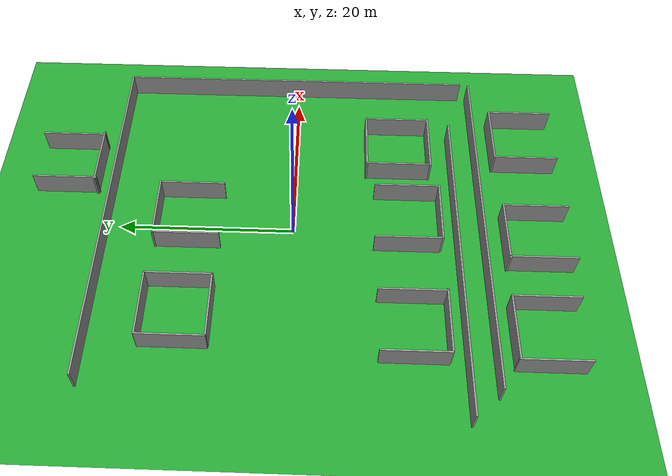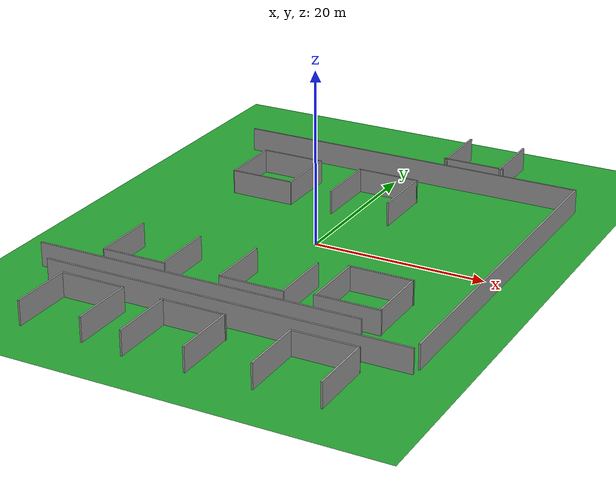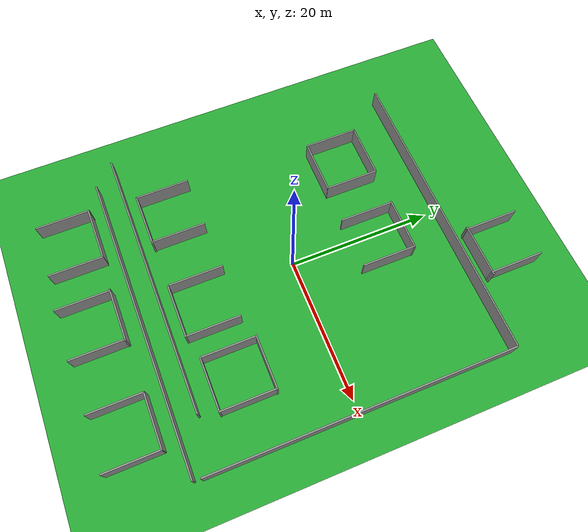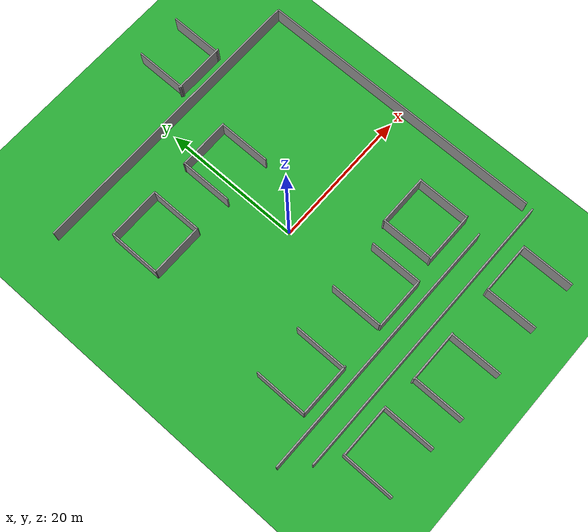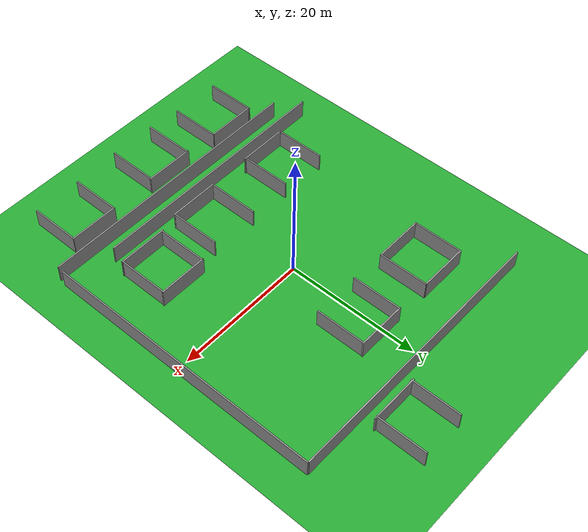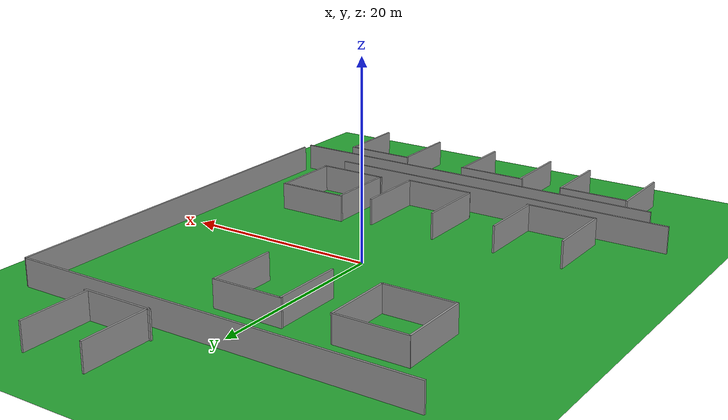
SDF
<sdf version="1.6">
 <world name="default">
  <model name="ground_plane">
   <static>1</static>
   <link name="link">
    <collision name="collision">
     <geometry><plane><normal>0 0 1</normal><size>100 100</size></plane></geometry>
     <surface><friction><ode><mu>100</mu><mu2>50</mu2></ode></friction></surface>
    </collision>
    <visual name="visual">
     <cast_shadows>0</cast_shadows>
     <geometry><plane><normal>0 0 1</normal><size>100 100</size></plane></geometry>
     <material>
      <script><uri>file://media/materials/scripts/gazebo.material</uri><name>Gazebo/Green</name></script>
     </material>
    </visual>
   </link>
  </model>
  <light name="sun" type="directional">
   <pose>0.0 0.0 1000 -0.35 -0.5 0</pose>
   <diffuse>0.8 0.8 0.8 1</diffuse>
   <specular>0.2 0.2 0.2 1</specular>
   <attenuation>
    <range>1000</range>
    <constant>0.9</constant>
    <linear>0.01</linear>
    <quadratic>0.001</quadratic>
   </attenuation>
   <direction>-0.5 0.1 -0.9</direction>
  </light>
  <model name="grey_wall_footway_1">
   <static>1</static>
   <link name="link">
    <pose>0 0 1.4 0 -0 0</pose>
    <collision name="collision"><geometry><box><size>0.2 42 2.8</size></box></geometry></collision>
    <visual name="visual">
     <cast_shadows>0</cast_shadows>
     <geometry><box><size>0.2 42.0 2.8</size></box></geometry>
     <material>
      <script>
       <uri>model://grey_wall/materials/scripts</uri>
       <uri>model://grey_wall/materials/textures</uri>
       <name>vrc/grey_wall</name>
      </script>
     </material>
    </visual>
   </link>
   <pose>22 0.5 0 0 0 0</pose>
  </model>
  <model name="grey_wall_footway_2">
   <static>1</static>
   <link name="link">
    <pose>0 0 1.4 0 -0 0</pose>
    <collision name="collision"><geometry><box><size>42 0.2 2.8</size></box></geometry></collision>
    <visual name="visual">
     <cast_shadows>0</cast_shadows>
     <geometry><box><size>42 0.2 2.8</size></box></geometry>
     <material>
      <script>
       <uri>model://grey_wall/materials/scripts</uri>
       <uri>model://grey_wall/materials/textures</uri>
       <name>vrc/grey_wall</name>
      </script>
     </material>
    </visual>
   </link>
   <pose>0.9 21.5 0 0 0 0</pose>
  </model>
  <model name="grey_wall_footway_3">
   <static>1</static>
   <link name="link">
    <pose>0 0 1.4 0 -0 0</pose>
    <collision name="collision"><geometry><box><size>42 0.2 2.8</size></box></geometry></collision>
    <visual name="visual">
     <cast_shadows>0</cast_shadows>
     <geometry><box><size>42 0.2 2.8</size></box></geometry>
     <material>
      <script>
       <uri>model://grey_wall/materials/scripts</uri>
       <uri>model://grey_wall/materials/textures</uri>
       <name>vrc/grey_wall</name>
      </script>
     </material>
    </visual>
   </link>
   <pose>0.9 -21.5 0 0 0 0</pose>
  </model>
  <model name="grey_wall_footway_3_0">
   <static>1</static>
   <link name="link">
    <pose>-5 0 1.4 0 -0 0</pose>
    <collision name="collision"><geometry><box><size>38 0.2 2.8</size></box></geometry></collision>
    <visual name="visual">
     <cast_shadows>0</cast_shadows>
     <geometry><box><size>38 0.2 2.8</size></box></geometry>
     <material>
      <script>
       <uri>model://grey_wall/materials/scripts</uri>
       <uri>model://grey_wall/materials/textures</uri>
       <name>vrc/grey_wall</name>
      </script>
     </material>
    </visual>
   </link>
   <pose>0.9 -18.5 0 0 0 0</pose>
  </model>
  <gravity>0 0 -9.8</gravity>
  <magnetic_field>6e-06 2.3e-05 -4.2e-05</magnetic_field>
  <atmosphere type="adiabatic"/>
  <physics name="default_physics" default="0" type="ode">
   <max_step_size>0.001</max_step_size>
   <real_time_factor>1</real_time_factor>
   <real_time_update_rate>1000</real_time_update_rate>
  </physics>
  <scene><ambient>0.4 0.4 0.4 1</ambient><background>0.7 0.7 0.7 1</background><shadows>1</shadows></scene>
  <audio><device>default</device></audio>
  <spherical_coordinates>
   <surface_model>EARTH_WGS84</surface_model>
   <latitude_deg>0</latitude_deg>
   <longitude_deg>0</longitude_deg>
   <elevation>0</elevation>
   <heading_deg>0</heading_deg>
  </spherical_coordinates>
  <model name="grey_wall">
   <static>1</static>
   <link name="link">
    <pose>0 0 1.4 0 -0 0</pose>
    <collision name="collision"><geometry><box><size>7.5 0.2 2.8</size></box></geometry></collision>
    <visual name="visual">
     <cast_shadows>0</cast_shadows>
     <geometry><box><size>7.5 0.2 2.8</size></box></geometry>
     <material>
      <script>
       <uri>model://grey_wall/materials/scripts</uri>
       <uri>model://grey_wall/materials/textures</uri>
       <name>vrc/grey_wall</name>
      </script>
     </material>
    </visual>
   </link>
   <pose>-12.4831 -16.7845 0 0 -0 0</pose>
  </model>
  <model name="grey_wall_clone">
   <static>1</static>
   <link name="link">
    <pose>0 0 1.4 0 -0 0</pose>
    <collision name="collision"><geometry><box><size>7.5 0.2 2.8</size></box></geometry></collision>
    <visual name="visual">
     <cast_shadows>0</cast_shadows>
     <geometry><box><size>7.5 0.2 2.8</size></box></geometry>
     <material>
      <script>
       <uri>model://grey_wall/materials/scripts</uri>
       <uri>model://grey_wall/materials/textures</uri>
       <name>vrc/grey_wall</name>
      </script>
     </material>
    </visual>
   </link>
   <pose>-13.1161 -23.4958 0 0 -0 0</pose>
  </model>
  <model name="grey_wall_clone_0">
   <static>1</static>
   <link name="link">
    <pose>0 0 1.4 0 -0 0</pose>
    <collision name="collision"><geometry><box><size>7.5 0.2 2.8</size></box></geometry></collision>
    <visual name="visual">
     <cast_shadows>0</cast_shadows>
     <geometry><box><size>7.5 0.2 2.8</size></box></geometry>
     <material>
      <script>
       <uri>model://grey_wall/materials/scripts</uri>
       <uri>model://grey_wall/materials/textures</uri>
       <name>vrc/grey_wall</name>
      </script>
     </material>
    </visual>
   </link>
   <pose>-0.875297 -23.9138 0 0 -0 0</pose>
  </model>
  <model name="grey_wall_clone_1">
   <static>1</static>
   <link name="link">
    <pose>0 0 1.4 0 -0 0</pose>
    <collision name="collision"><geometry><box><size>7.5 0.2 2.8</size></box></geometry></collision>
    <visual name="visual">
     <cast_shadows>0</cast_shadows>
     <geometry><box><size>7.5 0.2 2.8</size></box></geometry>
     <material>
      <script>
       <uri>model://grey_wall/materials/scripts</uri>
       <uri>model://grey_wall/materials/textures</uri>
       <name>vrc/grey_wall</name>
      </script>
     </material>
    </visual>
   </link>
   <pose>1.56628 -16.7371 0 0 -0 0</pose>
  </model>
  <model name="grey_wall_clone_2">
   <static>1</static>
   <link name="link">
    <pose>0 0 1.4 0 -0 0</pose>
    <collision name="collision"><geometry><box><size>7.5 0.2 2.8</size></box></geometry></collision>
    <visual name="visual">
     <cast_shadows>0</cast_shadows>
     <geometry><box><size>7.5 0.2 2.8</size></box></geometry>
     <material>
      <script>
       <uri>model://grey_wall/materials/scripts</uri>
       <uri>model://grey_wall/materials/textures</uri>
       <name>vrc/grey_wall</name>
      </script>
     </material>
    </visual>
   </link>
   <pose>13.5963 -23.6938 0 0 -0 0</pose>
  </model>
  <model name="grey_wall_clone_3">
   <static>1</static>
   <link name="link">
    <pose>0 0 1.4 0 -0 0</pose>
    <collision name="collision"><geometry><box><size>7.5 0.2 2.8</size></box></geometry></collision>
    <visual name="visual">
     <cast_shadows>0</cast_shadows>
     <geometry><box><size>7.5 0.2 2.8</size></box></geometry>
     <material>
      <script>
       <uri>model://grey_wall/materials/scripts</uri>
       <uri>model://grey_wall/materials/textures</uri>
       <name>vrc/grey_wall</name>
      </script>
     </material>
    </visual>
   </link>
   <pose>12.0457 -15.9312 0 0 -0 0</pose>
  </model>
  <model name="grey_wall_0">
   <static>1</static>
   <link name="link">
    <pose>0 0 1.4 0 -0 0</pose>
    <collision name="collision"><geometry><box><size>7.5 0.2 2.8</size></box></geometry></collision>
    <visual name="visual">
     <cast_shadows>0</cast_shadows>
     <geometry><box><size>7.5 0.2 2.8</size></box></geometry>
     <material>
      <script>
       <uri>model://grey_wall/materials/scripts</uri>
       <uri>model://grey_wall/materials/textures</uri>
       <name>vrc/grey_wall</name>
      </script>
     </material>
    </visual>
   </link>
   <pose>-11.5805 15.8164 0 0 -0 0</pose>
  </model>
  <model name="grey_wall_clone_4">
   <static>1</static>
   <link name="link">
    <pose>0 0 1.4 0 -0 0</pose>
    <collision name="collision"><geometry><box><size>7.5 0.2 2.8</size></box></geometry></collision>
    <visual name="visual">
     <cast_shadows>0</cast_shadows>
     <geometry><box><size>7.5 0.2 2.8</size></box></geometry>
     <material>
      <script>
       <uri>model://grey_wall/materials/scripts</uri>
       <uri>model://grey_wall/materials/textures</uri>
       <name>vrc/grey_wall</name>
      </script>
     </material>
    </visual>
   </link>
   <pose>1.14423 15.685 0 0 -0 0</pose>
  </model>
  <model name="grey_wall_clone_5">
   <static>1</static>
   <link name="link">
    <pose>0 0 1.4 0 -0 0</pose>
    <collision name="collision"><geometry><box><size>7.5 0.2 2.8</size></box></geometry></collision>
    <visual name="visual">
     <cast_shadows>0</cast_shadows>
     <geometry><box><size>7.5 0.2 2.8</size></box></geometry>
     <material>
      <script>
       <uri>model://grey_wall/materials/scripts</uri>
       <uri>model://grey_wall/materials/textures</uri>
       <name>vrc/grey_wall</name>
      </script>
     </material>
    </visual>
   </link>
   <pose>8.56945 23.53 0 0 -0 0</pose>
  </model>
  <model name="grey_wall_clone_6">
   <static>1</static>
   <link name="link">
    <pose>0 0 1.4 0 -0 0</pose>
    <collision name="collision"><geometry><box><size>7.5 0.2 2.8</size></box></geometry></collision>
    <visual name="visual">
     <cast_shadows>0</cast_shadows>
     <geometry><box><size>7.5 0.2 2.8</size></box></geometry>
     <material>
      <script>
       <uri>model://grey_wall/materials/scripts</uri>
       <uri>model://grey_wall/materials/textures</uri>
       <name>vrc/grey_wall</name>
      </script>
     </material>
    </visual>
   </link>
   <pose>-16.7792 -27.0898 0 0 -0 1.5708</pose>
  </model>
  <model name="grey_wall_clone_6_clone">
   <static>1</static>
   <link name="link">
    <pose>0 0 1.4 0 -0 0</pose>
    <collision name="collision"><geometry><box><size>7.5 0.2 2.8</size></box></geometry></collision>
    <visual name="visual">
     <cast_shadows>0</cast_shadows>
     <geometry><box><size>7.5 0.2 2.8</size></box></geometry>
     <material>
      <script>
       <uri>model://grey_wall/materials/scripts</uri>
       <uri>model://grey_wall/materials/textures</uri>
       <name>vrc/grey_wall</name>
      </script>
     </material>
    </visual>
   </link>
   <pose>-9.35737 -27.165 0 0 -0 1.5708</pose>
  </model>
  <model name="grey_wall_clone_6_clone_0">
   <static>1</static>
   <link name="link">
    <pose>0 0 1.4 0 -0 0</pose>
    <collision name="collision"><geometry><box><size>7.5 0.2 2.8</size></box></geometry></collision>
    <visual name="visual">
     <cast_shadows>0</cast_shadows>
     <geometry><box><size>7.5 0.2 2.8</size></box></geometry>
     <material>
      <script>
       <uri>model://grey_wall/materials/scripts</uri>
       <uri>model://grey_wall/materials/textures</uri>
       <name>vrc/grey_wall</name>
      </script>
     </material>
    </visual>
   </link>
   <pose>-4.36396 -27.6349 0 0 -0 1.5708</pose>
  </model>
  <model name="grey_wall_clone_6_clone_1">
   <static>1</static>
   <link name="link">
    <pose>0 0 1.4 0 -0 0</pose>
    <collision name="collision"><geometry><box><size>7.5 0.2 2.8</size></box></geometry></collision>
    <visual name="visual">
     <cast_shadows>0</cast_shadows>
     <geometry><box><size>7.5 0.2 2.8</size></box></geometry>
     <material>
      <script>
       <uri>model://grey_wall/materials/scripts</uri>
       <uri>model://grey_wall/materials/textures</uri>
       <name>vrc/grey_wall</name>
      </script>
     </material>
    </visual>
   </link>
   <pose>2.70788 -27.619 0 0 -0 1.5708</pose>
  </model>
  <model name="grey_wall_clone_6_clone_2">
   <static>1</static>
   <link name="link">
    <pose>0 0 1.4 0 -0 0</pose>
    <collision name="collision"><geometry><box><size>7.5 0.2 2.8</size></box></geometry></collision>
    <visual name="visual">
     <cast_shadows>0</cast_shadows>
     <geometry><box><size>7.5 0.2 2.8</size></box></geometry>
     <material>
      <script>
       <uri>model://grey_wall/materials/scripts</uri>
       <uri>model://grey_wall/materials/textures</uri>
       <name>vrc/grey_wall</name>
      </script>
     </material>
    </visual>
   </link>
   <pose>9.95471 -27.3658 0 0 -0 1.5708</pose>
  </model>
  <model name="grey_wall_clone_6_clone_3">
   <static>1</static>
   <link name="link">
    <pose>0 0 1.4 0 -0 0</pose>
    <collision name="collision"><geometry><box><size>7.5 0.2 2.8</size></box></geometry></collision>
    <visual name="visual">
     <cast_shadows>0</cast_shadows>
     <geometry><box><size>7.5 0.2 2.8</size></box></geometry>
     <material>
      <script>
       <uri>model://grey_wall/materials/scripts</uri>
       <uri>model://grey_wall/materials/textures</uri>
       <name>vrc/grey_wall</name>
      </script>
     </material>
    </visual>
   </link>
   <pose>17.2505 -27.4403 0 0 -0 1.5708</pose>
  </model>
  <model name="grey_wall_clone_6_clone_4">
   <static>1</static>
   <link name="link">
    <pose>0 0 1.4 0 -0 0</pose>
    <collision name="collision"><geometry><box><size>7.5 0.2 2.8</size></box></geometry></collision>
    <visual name="visual">
     <cast_shadows>0</cast_shadows>
     <geometry><box><size>7.5 0.2 2.8</size></box></geometry>
     <material>
      <script>
       <uri>model://grey_wall/materials/scripts</uri>
       <uri>model://grey_wall/materials/textures</uri>
       <name>vrc/grey_wall</name>
      </script>
     </material>
    </visual>
   </link>
   <pose>15.626 -12.2507 0 0 -0 1.5708</pose>
  </model>
  <model name="grey_wall_clone_6_clone_5">
   <static>1</static>
   <link name="link">
    <pose>0 0 1.4 0 -0 0</pose>
    <collision name="collision"><geometry><box><size>7.5 0.2 2.8</size></box></geometry></collision>
    <visual name="visual">
     <cast_shadows>0</cast_shadows>
     <geometry><box><size>7.5 0.2 2.8</size></box></geometry>
     <material>
      <script>
       <uri>model://grey_wall/materials/scripts</uri>
       <uri>model://grey_wall/materials/textures</uri>
       <name>vrc/grey_wall</name>
      </script>
     </material>
    </visual>
   </link>
   <pose>8.4686 -12.1052 0 0 -0 1.5708</pose>
  </model>
  <model name="grey_wall_clone_6_clone_6">
   <static>1</static>
   <link name="link">
    <pose>0 0 1.4 0 -0 0</pose>
    <collision name="collision"><geometry><box><size>7.5 0.2 2.8</size></box></geometry></collision>
    <visual name="visual">
     <cast_shadows>0</cast_shadows>
     <geometry><box><size>7.5 0.2 2.8</size></box></geometry>
     <material>
      <script>
       <uri>model://grey_wall/materials/scripts</uri>
       <uri>model://grey_wall/materials/textures</uri>
       <name>vrc/grey_wall</name>
      </script>
     </material>
    </visual>
   </link>
   <pose>5.19412 -13.0316 0 0 -0 1.5708</pose>
  </model>
  <model name="grey_wall_clone_6_clone_7">
   <static>1</static>
   <link name="link">
    <pose>0 0 1.4 0 -0 0</pose>
    <collision name="collision"><geometry><box><size>7.5 0.2 2.8</size></box></geometry></collision>
    <visual name="visual">
     <cast_shadows>0</cast_shadows>
     <geometry><box><size>7.5 0.2 2.8</size></box></geometry>
     <material>
      <script>
       <uri>model://grey_wall/materials/scripts</uri>
       <uri>model://grey_wall/materials/textures</uri>
       <name>vrc/grey_wall</name>
      </script>
     </material>
    </visual>
   </link>
   <pose>-2.18342 -12.8744 0 0 -0 1.5708</pose>
  </model>
  <model name="grey_wall_clone_6_clone_8">
   <static>1</static>
   <link name="link">
    <pose>0 0 1.4 0 -0 0</pose>
    <collision name="collision"><geometry><box><size>7.5 0.2 2.8</size></box></geometry></collision>
    <visual name="visual">
     <cast_shadows>0</cast_shadows>
     <geometry><box><size>7.5 0.2 2.8</size></box></geometry>
     <material>
      <script>
       <uri>model://grey_wall/materials/scripts</uri>
       <uri>model://grey_wall/materials/textures</uri>
       <name>vrc/grey_wall</name>
      </script>
     </material>
    </visual>
   </link>
   <pose>-8.99895 -13.0612 0 0 -0 1.5708</pose>
  </model>
  <model name="grey_wall_clone_6_clone_9">
   <static>1</static>
   <link name="link">
    <pose>0 0 1.4 0 -0 0</pose>
    <collision name="collision"><geometry><box><size>7.5 0.2 2.8</size></box></geometry></collision>
    <visual name="visual">
     <cast_shadows>0</cast_shadows>
     <geometry><box><size>7.5 0.2 2.8</size></box></geometry>
     <material>
      <script>
       <uri>model://grey_wall/materials/scripts</uri>
       <uri>model://grey_wall/materials/textures</uri>
       <name>vrc/grey_wall</name>
      </script>
     </material>
    </visual>
   </link>
   <pose>-16.2626 -13.0795 0 0 -0 1.5708</pose>
  </model>
  <model name="grey_wall_clone_6_clone_10">
   <static>1</static>
   <link name="link">
    <pose>0 0 1.4 0 -0 0</pose>
    <collision name="collision"><geometry><box><size>7.5 0.2 2.8</size></box></geometry></collision>
    <visual name="visual">
     <cast_shadows>0</cast_shadows>
     <geometry><box><size>7.5 0.2 2.8</size></box></geometry>
     <material>
      <script>
       <uri>model://grey_wall/materials/scripts</uri>
       <uri>model://grey_wall/materials/textures</uri>
       <name>vrc/grey_wall</name>
      </script>
     </material>
    </visual>
   </link>
   <pose>-15.2536 12.1478 0 0 -0 1.5708</pose>
  </model>
  <model name="grey_wall_clone_6_clone_11">
   <static>1</static>
   <link name="link">
    <pose>0 0 1.4 0 -0 0</pose>
    <collision name="collision"><geometry><box><size>7.5 0.2 2.8</size></box></geometry></collision>
    <visual name="visual">
     <cast_shadows>0</cast_shadows>
     <geometry><box><size>7.5 0.2 2.8</size></box></geometry>
     <material>
      <script>
       <uri>model://grey_wall/materials/scripts</uri>
       <uri>model://grey_wall/materials/textures</uri>
       <name>vrc/grey_wall</name>
      </script>
     </material>
    </visual>
   </link>
   <pose>-7.78518 12.1114 0 0 -0 1.5708</pose>
  </model>
  <model name="grey_wall_clone_6_clone_12">
   <static>1</static>
   <link name="link">
    <pose>0 0 1.4 0 -0 0</pose>
    <collision name="collision"><geometry><box><size>7.5 0.2 2.8</size></box></geometry></collision>
    <visual name="visual">
     <cast_shadows>0</cast_shadows>
     <geometry><box><size>7.5 0.2 2.8</size></box></geometry>
     <material>
      <script>
       <uri>model://grey_wall/materials/scripts</uri>
       <uri>model://grey_wall/materials/textures</uri>
       <name>vrc/grey_wall</name>
      </script>
     </material>
    </visual>
   </link>
   <pose>-2.43286 11.9625 0 0 -0 1.5708</pose>
  </model>
  <model name="grey_wall_clone_6_clone_13">
   <static>1</static>
   <link name="link">
    <pose>0 0 1.4 0 -0 0</pose>
    <collision name="collision"><geometry><box><size>7.5 0.2 2.8</size></box></geometry></collision>
    <visual name="visual">
     <cast_shadows>0</cast_shadows>
     <geometry><box><size>7.5 0.2 2.8</size></box></geometry>
     <material>
      <script>
       <uri>model://grey_wall/materials/scripts</uri>
       <uri>model://grey_wall/materials/textures</uri>
       <name>vrc/grey_wall</name>
      </script>
     </material>
    </visual>
   </link>
   <pose>4.75282 11.9355 0 0 -0 1.5708</pose>
  </model>
  <model name="grey_wall_clone_6_clone_14">
   <static>1</static>
   <link name="link">
    <pose>0 0 1.4 0 -0 0</pose>
    <collision name="collision"><geometry><box><size>7.5 0.2 2.8</size></box></geometry></collision>
    <visual name="visual">
     <cast_shadows>0</cast_shadows>
     <geometry><box><size>7.5 0.2 2.8</size></box></geometry>
     <material>
      <script>
       <uri>model://grey_wall/materials/scripts</uri>
       <uri>model://grey_wall/materials/textures</uri>
       <name>vrc/grey_wall</name>
      </script>
     </material>
    </visual>
   </link>
   <pose>11.926 27.1571 0 0 -0 1.5708</pose>
  </model>
  <model name="grey_wall_clone_6_clone_15">
   <static>1</static>
   <link name="link">
    <pose>0 0 1.4 0 -0 0</pose>
    <collision name="collision"><geometry><box><size>7.5 0.2 2.8</size></box></geometry></collision>
    <visual name="visual">
     <cast_shadows>0</cast_shadows>
     <geometry><box><size>7.5 0.2 2.8</size></box></geometry>
     <material>
      <script>
       <uri>model://grey_wall/materials/scripts</uri>
       <uri>model://grey_wall/materials/textures</uri>
       <name>vrc/grey_wall</name>
      </script>
     </material>
    </visual>
   </link>
   <pose>5.13853 27.0575 0 0 -0 1.5708</pose>
  </model>
  <model name="grey_wall_0_clone">
   <static>1</static>
   <link name="link">
    <pose>0 0 1.4 0 -0 0</pose>
    <collision name="collision"><geometry><box><size>7.5 0.2 2.8</size></box></geometry></collision>
    <visual name="visual">
     <cast_shadows>0</cast_shadows>
     <geometry><box><size>7.5 0.2 2.8</size></box></geometry>
     <material>
      <script>
       <uri>model://grey_wall/materials/scripts</uri>
       <uri>model://grey_wall/materials/textures</uri>
       <name>vrc/grey_wall</name>
      </script>
     </material>
    </visual>
   </link>
   <pose>-11.4964 8.44984 0 0 -0 0</pose>
  </model>
  <model name="grey_wall_0_clone_0">
   <static>1</static>
   <link name="link">
    <pose>0 0 1.4 0 -0 0</pose>
    <collision name="collision"><geometry><box><size>7.5 0.2 2.8</size></box></geometry></collision>
    <visual name="visual">
     <cast_shadows>0</cast_shadows>
     <geometry><box><size>7.5 0.2 2.8</size></box></geometry>
     <material>
      <script>
       <uri>model://grey_wall/materials/scripts</uri>
       <uri>model://grey_wall/materials/textures</uri>
       <name>vrc/grey_wall</name>
      </script>
     </material>
    </visual>
   </link>
   <pose>12.0307 -8.44032 0 0 -0 0</pose>
  </model>
 </world>
</sdf>
